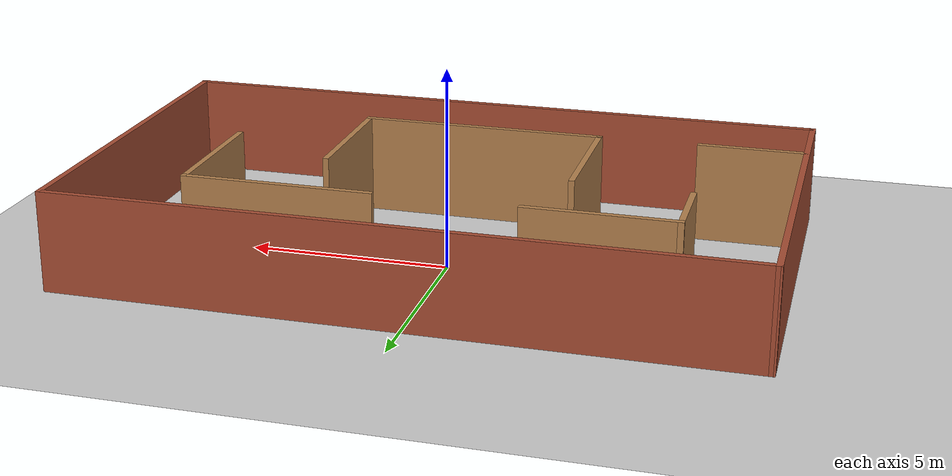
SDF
<sdf version="1.7">
 <world name="default">
  <light name="sun" type="directional">
   <pose>0 0 10 0 -0 0</pose>
   <diffuse>0.8 0.8 0.8 1</diffuse>
   <specular>0.2 0.2 0.2 1</specular>
   <attenuation>
    <range>1000</range>
    <constant>0.9</constant>
    <linear>0.01</linear>
    <quadratic>0.001</quadratic>
   </attenuation>
   <direction>-0.5 0.1 -0.9</direction>
   <spot><inner_angle>0</inner_angle><outer_angle>0</outer_angle><falloff>0</falloff></spot>
  </light>
  <model name="ground_plane">
   <static>1</static>
   <link name="link">
    <collision name="collision">
     <geometry><plane><normal>0 0 1</normal><size>100 100</size></plane></geometry>
     <surface>
      <contact><collide_bitmask>65535</collide_bitmask></contact>
      <friction><ode><mu>100</mu><mu2>50</mu2></ode></friction>
     </surface>
    </collision>
    <visual name="visual">
     <cast_shadows>0</cast_shadows>
     <geometry><plane><normal>0 0 1</normal><size>100 100</size></plane></geometry>
     <material>
      <script><uri>file://media/materials/scripts/gazebo.material</uri><name>Gazebo/Grey</name></script>
     </material>
    </visual>
   </link>
  </model>
  <gravity>0 0 -9.8</gravity>
  <magnetic_field>6e-06 2.3e-05 -4.2e-05</magnetic_field>
  <atmosphere type="adiabatic"/>
  <physics type="ode">
   <max_step_size>0.001</max_step_size>
   <real_time_factor>1</real_time_factor>
   <real_time_update_rate>1000</real_time_update_rate>
  </physics>
  <scene><ambient>0.4 0.4 0.4 1</ambient><background>0.7 0.7 0.7 1</background><shadows>1</shadows></scene>
  <spherical_coordinates>
   <surface_model>EARTH_WGS84</surface_model>
   <latitude_deg>0</latitude_deg>
   <longitude_deg>0</longitude_deg>
   <elevation>0</elevation>
   <heading_deg>0</heading_deg>
  </spherical_coordinates>
  <model name="maze_room">
   <pose>0.252039 -0.881197 0 0 -0 0</pose>
   <link name="Wall_31">
    <collision name="Wall_31_Collision">
     <geometry><box><size>9.716 0.15 2.5</size></box></geometry>
     <pose>0 0 1.25 0 -0 0</pose>
    </collision>
    <visual name="Wall_31_Visual">
     <pose>0 0 1.25 0 -0 0</pose>
     <geometry><box><size>9.716 0.15 2.5</size></box></geometry>
     <material>
      <script><uri>file://media/materials/scripts/gazebo.material</uri><name>Gazebo/Bricks</name></script>
      <ambient>1 1 1 1</ambient>
     </material>
     <meta><layer>0</layer></meta>
    </visual>
    <pose>8.41563 -0.001932 0 0 -0 1.5708</pose>
   </link>
   <link name="Wall_32">
    <collision name="Wall_32_Collision">
     <geometry><box><size>16.9939 0.15 2.5</size></box></geometry>
     <pose>0 0 1.25 0 -0 0</pose>
    </collision>
    <visual name="Wall_32_Visual">
     <pose>0 0 1.25 0 -0 0</pose>
     <geometry><box><size>16.9939 0.15 2.5</size></box></geometry>
     <material>
      <script><uri>file://media/materials/scripts/gazebo.material</uri><name>Gazebo/Bricks</name></script>
      <ambient>1 1 1 1</ambient>
     </material>
     <meta><layer>0</layer></meta>
    </visual>
    <pose>-0.006274 4.78298 0 0 -0 3.14137</pose>
   </link>
   <link name="Wall_33">
    <collision name="Wall_33_Collision">
     <geometry><box><size>9.71632 0.15 2.5</size></box></geometry>
     <pose>0 0 1.25 0 -0 0</pose>
    </collision>
    <visual name="Wall_33_Visual">
     <pose>0 0 1.25 0 -0 0</pose>
     <geometry><box><size>9.71632 0.15 2.5</size></box></geometry>
     <material>
      <script><uri>file://media/materials/scripts/gazebo.material</uri><name>Gazebo/Bricks</name></script>
      <ambient>1 1 1 1</ambient>
     </material>
     <meta><layer>0</layer></meta>
    </visual>
    <pose>-8.42497 0.00172 0 0 -0 -1.57013</pose>
   </link>
   <link name="Wall_34">
    <collision name="Wall_34_Collision">
     <geometry><box><size>17 0.15 2.5</size></box></geometry>
     <pose>0 0 1.25 0 -0 0</pose>
    </collision>
    <visual name="Wall_34_Visual">
     <pose>0 0 1.25 0 -0 0</pose>
     <geometry><box><size>17 0.15 2.5</size></box></geometry>
     <material>
      <script><uri>file://media/materials/scripts/gazebo.material</uri><name>Gazebo/Bricks</name></script>
      <ambient>1 1 1 1</ambient>
     </material>
     <meta><layer>0</layer></meta>
    </visual>
    <pose>0.003236 -4.78144 0 0 -0 0</pose>
   </link>
   <link name="Wall_36">
    <collision name="Wall_36_Collision">
     <geometry><box><size>2.0469 0.15 2.5</size></box></geometry>
     <pose>0 0 1.25 0 -0 0</pose>
    </collision>
    <visual name="Wall_36_Visual">
     <pose>0 0 1.25 0 -0 0</pose>
     <geometry><box><size>2.0469 0.15 2.5</size></box></geometry>
     <material>
      <script><uri>file://media/materials/scripts/gazebo.material</uri><name>Gazebo/Wood</name></script>
      <ambient>1 1 1 1</ambient>
     </material>
     <meta><layer>0</layer></meta>
    </visual>
    <pose>-6.12648 1.85616 0 0 -0 1.5702</pose>
   </link>
   <link name="Wall_37">
    <collision name="Wall_37_Collision">
     <geometry><box><size>3.75 0.15 2.5</size></box></geometry>
     <pose>0 0 1.25 0 -0 0</pose>
    </collision>
    <visual name="Wall_37_Visual">
     <pose>0 0 1.25 0 -0 0</pose>
     <geometry><box><size>3.75 0.15 2.5</size></box></geometry>
     <material>
      <script><uri>file://media/materials/scripts/gazebo.material</uri><name>Gazebo/Wood</name></script>
      <ambient>1 1 1 1</ambient>
     </material>
     <meta><layer>0</layer></meta>
    </visual>
    <pose>-4.32591 2.8044 0 0 -0 0</pose>
   </link>
   <link name="Wall_39">
    <collision name="Wall_39_Collision">
     <geometry><box><size>3.59364 0.15 2.5</size></box></geometry>
     <pose>0 0 1.25 0 -0 0</pose>
    </collision>
    <visual name="Wall_39_Visual">
     <pose>0 0 1.25 0 -0 0</pose>
     <geometry><box><size>3.59364 0.15 2.5</size></box></geometry>
     <material>
      <script><uri>file://media/materials/scripts/gazebo.material</uri><name>Gazebo/Wood</name></script>
      <ambient>1 1 1 1</ambient>
     </material>
     <meta><layer>0</layer></meta>
    </visual>
    <pose>-3.25289 -0.989542 0 0 -0 -1.5708</pose>
   </link>
   <link name="Wall_40">
    <collision name="Wall_40_Collision">
     <geometry><box><size>6.25 0.15 2.5</size></box></geometry>
     <pose>0 0 1.25 0 -0 0</pose>
    </collision>
    <visual name="Wall_40_Visual">
     <pose>0 0 1.25 0 -0 0</pose>
     <geometry><box><size>6.25 0.15 2.5</size></box></geometry>
     <material>
      <script><uri>file://media/materials/scripts/gazebo.material</uri><name>Gazebo/Wood</name></script>
      <ambient>1 1 1 1</ambient>
     </material>
     <meta><layer>0</layer></meta>
    </visual>
    <pose>-0.202892 -2.71103 0 0 -0 0</pose>
   </link>
   <link name="Wall_41">
    <collision name="Wall_41_Collision">
     <geometry><box><size>3.59364 0.15 2.5</size></box></geometry>
     <pose>0 0 1.25 0 -0 0</pose>
    </collision>
    <visual name="Wall_41_Visual">
     <pose>0 0 1.25 0 -0 0</pose>
     <geometry><box><size>3.59364 0.15 2.5</size></box></geometry>
     <material>
      <script><uri>file://media/materials/scripts/gazebo.material</uri><name>Gazebo/Wood</name></script>
      <ambient>1 1 1 1</ambient>
     </material>
     <meta><layer>0</layer></meta>
    </visual>
    <pose>2.84711 -0.989542 0 0 -0 1.5708</pose>
   </link>
   <link name="Wall_43">
    <collision name="Wall_43_Collision">
     <geometry><box><size>4.75 0.15 2.5</size></box></geometry>
     <pose>0 0 1.25 0 -0 0</pose>
    </collision>
    <visual name="Wall_43_Visual">
     <pose>0 0 1.25 0 -0 0</pose>
     <geometry><box><size>4.75 0.15 2.5</size></box></geometry>
     <material>
      <script><uri>file://media/materials/scripts/gazebo.material</uri><name>Gazebo/Wood</name></script>
      <ambient>1 1 1 1</ambient>
     </material>
     <meta><layer>0</layer></meta>
    </visual>
    <pose>3.35834 2.84994 0 0 -0 0</pose>
   </link>
   <link name="Wall_44">
    <collision name="Wall_44_Collision">
     <geometry><box><size>3.54649 0.15 2.5</size></box></geometry>
     <pose>0 0 1.25 0 -0 0</pose>
    </collision>
    <visual name="Wall_44_Visual">
     <pose>0 0 1.25 0 -0 0</pose>
     <geometry><box><size>3.54649 0.15 2.5</size></box></geometry>
     <material>
      <script><uri>file://media/materials/scripts/gazebo.material</uri><name>Gazebo/Wood</name></script>
      <ambient>1 1 1 1</ambient>
     </material>
     <meta><layer>0</layer></meta>
    </visual>
    <pose>5.65834 1.11778 0 0 -0 -1.5708</pose>
   </link>
   <link name="Wall_46">
    <collision name="Wall_46_Collision">
     <geometry><box><size>2.75 0.15 2.5</size></box></geometry>
     <pose>0 0 1.25 0 -0 0</pose>
    </collision>
    <visual name="Wall_46_Visual">
     <pose>0 0 1.25 0 -0 0</pose>
     <geometry><box><size>2.75 0.15 2.5</size></box></geometry>
     <material>
      <script><uri>file://media/materials/scripts/gazebo.material</uri><name>Gazebo/Wood</name></script>
      <ambient>1 1 1 1</ambient>
     </material>
     <meta><layer>0</layer></meta>
    </visual>
    <pose>-7.10957 -2.76538 0 0 -0 0</pose>
   </link>
   <static>1</static>
  </model>
 </world>
</sdf>
